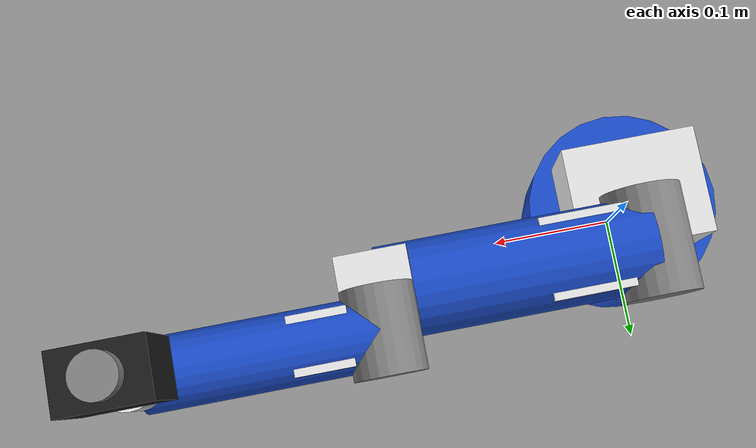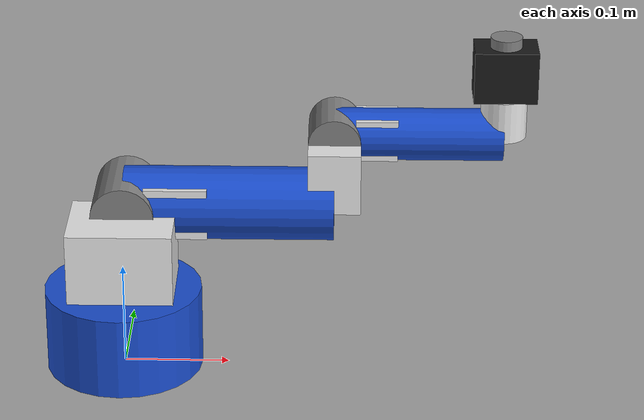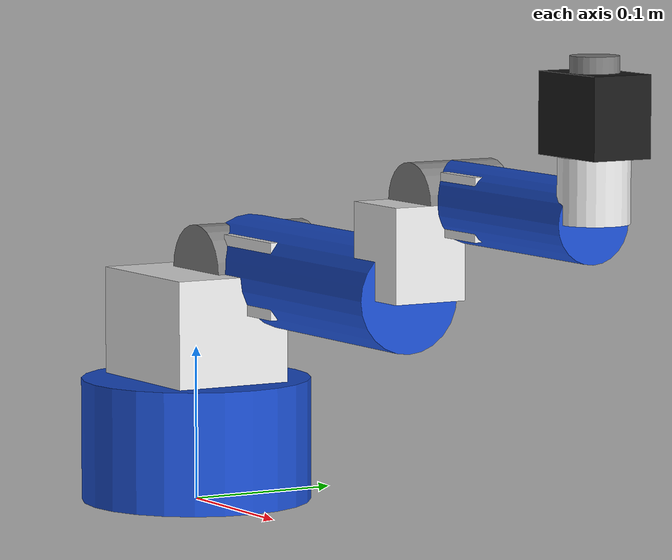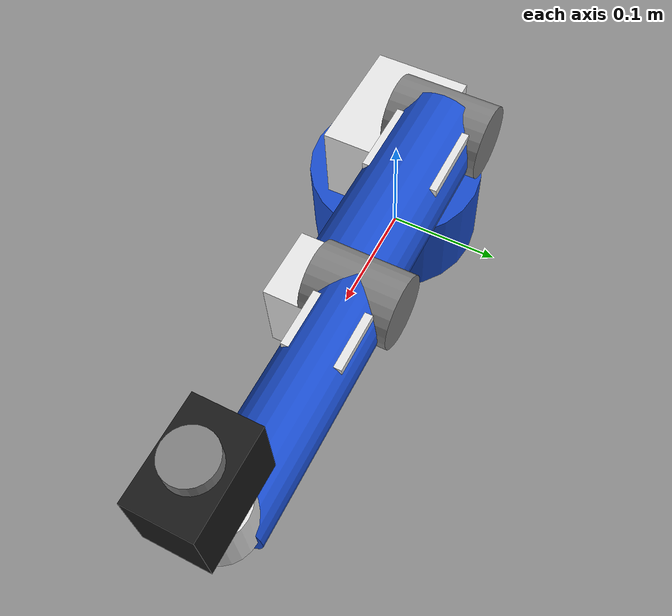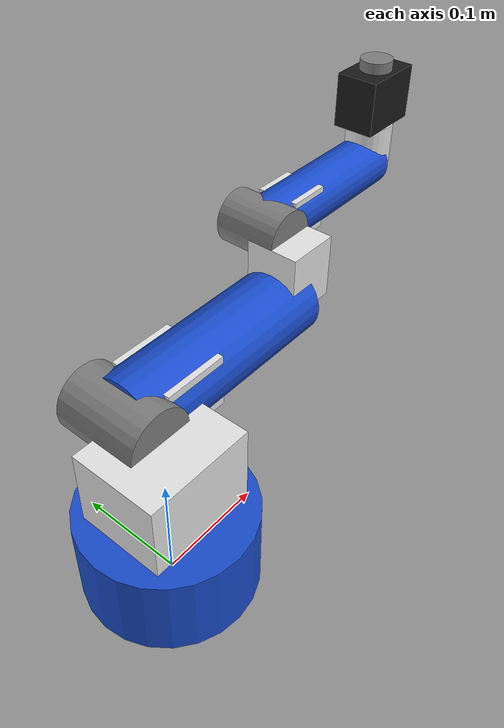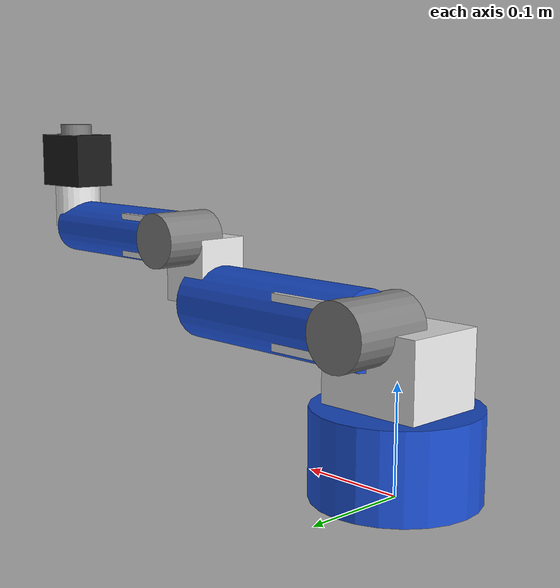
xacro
<?xml version="1.0"?>
<robot name="niryo_ned2" xmlns:xacro="http://www.ros.org/wiki/xacro">

  <!-- Define materials with Niryo colors -->
  <material name="niryo_blue">
    <color rgba="0.1 0.3 0.8 1"/>
  </material>

  <material name="niryo_white">
    <color rgba="0.9 0.9 0.9 1"/>
  </material>

  <material name="niryo_black">
    <color rgba="0.1 0.1 0.1 1"/>
  </material>

  <material name="niryo_grey">
    <color rgba="0.5 0.5 0.5 1"/>
  </material>

  <!-- Base Link - Robot base -->
  <link name="base_link">
    <visual>
      <origin xyz="0 0 0.04" rpy="0 0 0"/>
      <geometry>
        <cylinder radius="0.075" length="0.08"/>
      </geometry>
      <material name="niryo_blue"/>
    </visual>
    <collision>
      <origin xyz="0 0 0.04" rpy="0 0 0"/>
      <geometry>
        <cylinder radius="0.075" length="0.08"/>
      </geometry>
    </collision>
    <inertial>
      <origin xyz="0 0 0.04" rpy="0 0 0"/>
      <mass value="1.8"/>
      <inertia ixx="0.008" ixy="0" ixz="0" iyy="0.008" iyz="0" izz="0.012"/>
    </inertial>
  </link>

  <!-- Joint 1 - Base to Shoulder -->
  <joint name="joint_1" type="revolute">
    <origin xyz="0 0 0.08" rpy="0 0 0"/>
    <parent link="base_link"/>
    <child link="shoulder_link"/>
    <axis xyz="0 0 1"/>
    <limit lower="-2.967" upper="2.967" effort="50" velocity="1.57"/>
  </joint>

  <!-- Shoulder Link - Rotating shoulder section -->
  <link name="shoulder_link">
    <visual>
      <origin xyz="0 0 0.035" rpy="0 0 0"/>
      <geometry>
        <box size="0.1 0.08 0.07"/>
      </geometry>
      <material name="niryo_white"/>
    </visual>
    <visual>
      <origin xyz="0 0.04 0.07" rpy="1.57 0 0"/>
      <geometry>
        <cylinder radius="0.03" length="0.08"/>
      </geometry>
      <material name="niryo_grey"/>
    </visual>
    <collision>
      <origin xyz="0 0 0.035" rpy="0 0 0"/>
      <geometry>
        <box size="0.1 0.08 0.07"/>
      </geometry>
    </collision>
    <collision>
      <origin xyz="0 0.04 0.07" rpy="1.57 0 0"/>
      <geometry>
        <cylinder radius="0.03" length="0.08"/>
      </geometry>
    </collision>
    <inertial>
      <origin xyz="0 0 0.05" rpy="0 0 0"/>
      <mass value="1.2"/>
      <inertia ixx="0.006" ixy="0" ixz="0" iyy="0.008" iyz="0" izz="0.006"/>
    </inertial>
  </link>

  <!-- Joint 2 - Shoulder to Arm -->
  <joint name="joint_2" type="revolute">
    <origin xyz="0 0.04 0.07" rpy="0 0 0"/>
    <parent link="shoulder_link"/>
    <child link="arm_link"/>
    <axis xyz="0 1 0"/>
    <limit lower="-1.658" upper="1.658" effort="50" velocity="1.57"/>
  </joint>

  <!-- Arm Link - Upper arm -->
  <link name="arm_link">
    <visual>
      <origin xyz="0.1 0 0" rpy="0 1.57 0"/>
      <geometry>
        <cylinder radius="0.035" length="0.2"/>
      </geometry>
      <material name="niryo_blue"/>
    </visual>
    <visual>
      <origin xyz="0.05 0 0" rpy="0 0 0"/>
      <geometry>
        <box size="0.06 0.06 0.05"/>
      </geometry>
      <material name="niryo_white"/>
    </visual>
    <collision>
      <origin xyz="0.1 0 0" rpy="0 1.57 0"/>
      <geometry>
        <cylinder radius="0.035" length="0.2"/>
      </geometry>
    </collision>
    <inertial>
      <origin xyz="0.1 0 0" rpy="0 1.57 0"/>
      <mass value="1.0"/>
      <inertia ixx="0.004" ixy="0" ixz="0" iyy="0.018" iyz="0" izz="0.018"/>
    </inertial>
  </link>

  <!-- Joint 3 - Arm to Elbow -->
  <joint name="joint_3" type="revolute">
    <origin xyz="0.2 0 0" rpy="0 0 0"/>
    <parent link="arm_link"/>
    <child link="elbow_link"/>
    <axis xyz="0 1 0"/>
    <limit lower="-1.397" upper="1.397" effort="30" velocity="1.57"/>
  </joint>

  <!-- Elbow Link - Elbow joint housing -->
  <link name="elbow_link">
    <visual>
      <origin xyz="0 0 0.03" rpy="0 0 0"/>
      <geometry>
        <box size="0.05 0.05 0.06"/>
      </geometry>
      <material name="niryo_white"/>
    </visual>
    <visual>
      <origin xyz="0 0.03 0.06" rpy="1.57 0 0"/>
      <geometry>
        <cylinder radius="0.025" length="0.06"/>
      </geometry>
      <material name="niryo_grey"/>
    </visual>
    <collision>
      <origin xyz="0 0 0.03" rpy="0 0 0"/>
      <geometry>
        <box size="0.05 0.05 0.06"/>
      </geometry>
    </collision>
    <inertial>
      <origin xyz="0 0 0.03" rpy="0 0 0"/>
      <mass value="0.7"/>
      <inertia ixx="0.002" ixy="0" ixz="0" iyy="0.002" iyz="0" izz="0.002"/>
    </inertial>
  </link>

  <!-- Joint 4 - Elbow to Forearm -->
  <joint name="joint_4" type="revolute">
    <origin xyz="0 0.03 0.06" rpy="0 0 0"/>
    <parent link="elbow_link"/>
    <child link="forearm_link"/>
    <axis xyz="0 1 0"/>
    <limit lower="-2.094" upper="2.094" effort="30" velocity="1.57"/>
  </joint>

  <!-- Forearm Link - Lower arm -->
  <link name="forearm_link">
    <visual>
      <origin xyz="0.08 0 0" rpy="0 1.57 0"/>
      <geometry>
        <cylinder radius="0.025" length="0.16"/>
      </geometry>
      <material name="niryo_blue"/>
    </visual>
    <visual>
      <origin xyz="0.04 0 0" rpy="0 0 0"/>
      <geometry>
        <box size="0.04 0.04 0.04"/>
      </geometry>
      <material name="niryo_white"/>
    </visual>
    <collision>
      <origin xyz="0.08 0 0" rpy="0 1.57 0"/>
      <geometry>
        <cylinder radius="0.025" length="0.16"/>
      </geometry>
    </collision>
    <inertial>
      <origin xyz="0.08 0 0" rpy="0 1.57 0"/>
      <mass value="0.5"/>
      <inertia ixx="0.001" ixy="0" ixz="0" iyy="0.006" iyz="0" izz="0.006"/>
    </inertial>
  </link>

  <!-- Joint 5 - Forearm to Wrist -->
  <joint name="joint_5" type="revolute">
    <origin xyz="0.16 0 0" rpy="0 0 0"/>
    <parent link="forearm_link"/>
    <child link="wrist_link"/>
    <axis xyz="0 0 1"/>
    <limit lower="-2.967" upper="2.967" effort="20" velocity="2.0"/>
  </joint>

  <!-- Wrist Link - Wrist rotation -->
  <link name="wrist_link">
    <visual>
      <origin xyz="0 0 0.02" rpy="0 0 0"/>
      <geometry>
        <cylinder radius="0.022" length="0.04"/>
      </geometry>
      <material name="niryo_white"/>
    </visual>
    <collision>
      <origin xyz="0 0 0.02" rpy="0 0 0"/>
      <geometry>
        <cylinder radius="0.022" length="0.04"/>
      </geometry>
    </collision>
    <inertial>
      <origin xyz="0 0 0.02" rpy="0 0 0"/>
      <mass value="0.25"/>
      <inertia ixx="0.0003" ixy="0" ixz="0" iyy="0.0003" iyz="0" izz="0.0001"/>
    </inertial>
  </link>

  <!-- Joint 6 - Wrist to Hand -->
  <joint name="joint_6" type="revolute">
    <origin xyz="0 0 0.04" rpy="0 0 0"/>
    <parent link="wrist_link"/>
    <child link="hand_link"/>
    <axis xyz="0 1 0"/>
    <limit lower="-1.658" upper="1.658" effort="20" velocity="2.0"/>
  </joint>

  <!-- Hand Link - End effector / gripper mount -->
  <link name="hand_link">
    <visual>
      <origin xyz="0 0 0.025" rpy="0 0 0"/>
      <geometry>
        <box size="0.06 0.04 0.05"/>
      </geometry>
      <material name="niryo_black"/>
    </visual>
    <visual>
      <origin xyz="0 0 0.05" rpy="0 0 0"/>
      <geometry>
        <cylinder radius="0.015" length="0.02"/>
      </geometry>
      <material name="niryo_grey"/>
    </visual>
    <collision>
      <origin xyz="0 0 0.025" rpy="0 0 0"/>
      <geometry>
        <box size="0.06 0.04 0.05"/>
      </geometry>
    </collision>
    <inertial>
      <origin xyz="0 0 0.025" rpy="0 0 0"/>
      <mass value="0.15"/>
      <inertia ixx="0.0002" ixy="0" ixz="0" iyy="0.0002" iyz="0" izz="0.0001"/>
    </inertial>
  </link>

  <!-- Gazebo plugins and colors -->
  <gazebo reference="base_link">
    <material>Gazebo/Blue</material>
  </gazebo>

  <gazebo reference="shoulder_link">
    <material>Gazebo/White</material>
  </gazebo>

  <gazebo reference="arm_link">
    <material>Gazebo/Blue</material>
  </gazebo>

  <gazebo reference="elbow_link">
    <material>Gazebo/White</material>
  </gazebo>

  <gazebo reference="forearm_link">
    <material>Gazebo/Blue</material>
  </gazebo>

  <gazebo reference="wrist_link">
    <material>Gazebo/White</material>
  </gazebo>

  <gazebo reference="hand_link">
    <material>Gazebo/Black</material>
  </gazebo>

  <!-- Gazebo Joint Position Control Plugin -->
  <gazebo>
    <plugin filename="gz-sim-joint-position-controller-system" name="gz::sim::systems::JointPositionController">
      <joint_name>joint_1</joint_name>
      <joint_name>joint_2</joint_name>
      <joint_name>joint_3</joint_name>
      <joint_name>joint_4</joint_name>
      <joint_name>joint_5</joint_name>
      <joint_name>joint_6</joint_name>
      <initial_position>0</initial_position>
      <p_gain>1000</p_gain>
      <i_gain>100</i_gain>
      <d_gain>10</d_gain>
    </plugin>
  </gazebo>

</robot>
